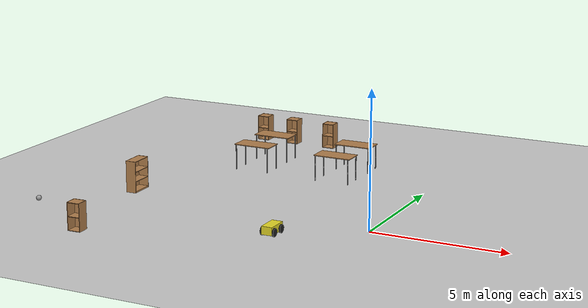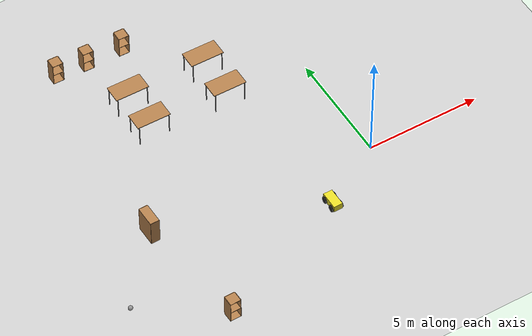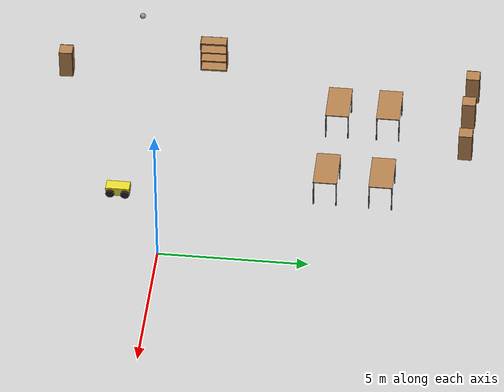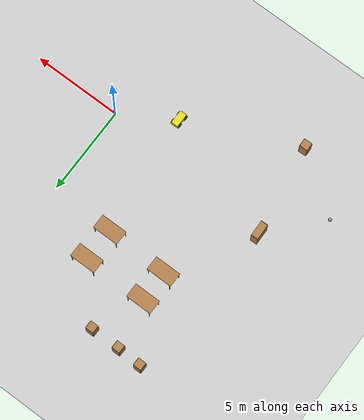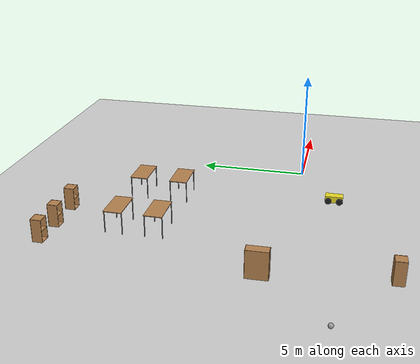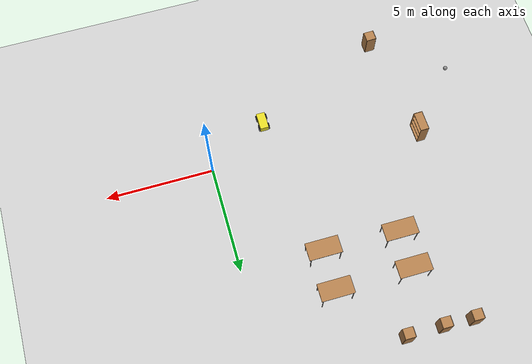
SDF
<sdf version="1.6">
 <world name="default">
  <model name="ground_plane">
   <static>1</static>
   <link name="link">
    <collision name="collision">
     <geometry><plane><normal>0 0 1</normal><size>100 100</size></plane></geometry>
     <surface><friction><ode><mu>100</mu><mu2>50</mu2></ode></friction></surface>
    </collision>
    <visual name="visual">
     <cast_shadows>0</cast_shadows>
     <geometry><plane><normal>0 0 1</normal><size>100 100</size></plane></geometry>
     <material>
      <script><uri>file://media/materials/scripts/gazebo.material</uri><name>Gazebo/Grey</name></script>
     </material>
    </visual>
   </link>
  </model>
  <model name="cabinet">
   <static>1</static>
   <link name="cabinet_bottom_plate">
    <inertial>
     <pose>0 0 -1 0 -0 0</pose>
     <inertia><ixx>2.05</ixx><ixy>0</ixy><ixz>0</ixz><iyy>2.05</iyy><iyz>0</iyz><izz>2.05</izz></inertia>
     <mass>25</mass>
    </inertial>
    <collision name="cabinet_bottom_plate_geom">
     <pose>0 0 0.01 0 -0 0</pose>
     <geometry><box><size>0.45 0.45 0.02</size></box></geometry>
    </collision>
    <visual name="cabinet_bottom_plate_geom_visual">
     <pose>0 0 0.01 0 -0 0</pose>
     <geometry><box><size>0.45 0.45 0.02</size></box></geometry>
     <material>
      <script><uri>file://media/materials/scripts/gazebo.material</uri><name>Gazebo/Wood</name></script>
     </material>
    </visual>
    <collision name="cabinet_bottom_plate_geom_cabinet_back_plate">
     <pose>0.235 0 0.51 0 -0 0</pose>
     <geometry><box><size>0.02 0.45 1.02</size></box></geometry>
    </collision>
    <visual name="cabinet_bottom_plate_geom_cabinet_back_plate_visual">
     <pose>0.235 0 0.51 0 -0 0</pose>
     <geometry><box><size>0.02 0.45 1.02</size></box></geometry>
     <material>
      <script><uri>file://media/materials/scripts/gazebo.material</uri><name>Gazebo/Wood</name></script>
     </material>
    </visual>
    <collision name="cabinet_bottom_plate_geom_cabinet_left_plate">
     <pose>0 0.235 0.51 0 -0 0</pose>
     <geometry><box><size>0.45 0.02 1.02</size></box></geometry>
    </collision>
    <visual name="cabinet_bottom_plate_geom_cabinet_left_plate_visual">
     <pose>0 0.235 0.51 0 -0 0</pose>
     <geometry><box><size>0.45 0.02 1.02</size></box></geometry>
     <material>
      <script><uri>file://media/materials/scripts/gazebo.material</uri><name>Gazebo/Wood</name></script>
     </material>
    </visual>
    <collision name="cabinet_bottom_plate_geom_cabinet_middle_plate">
     <pose>0 0 0.51 0 -0 0</pose>
     <geometry><box><size>0.45 0.45 0.02</size></box></geometry>
    </collision>
    <visual name="cabinet_bottom_plate_geom_cabinet_middle_plate_visual">
     <pose>0 0 0.51 0 -0 0</pose>
     <geometry><box><size>0.45 0.45 0.02</size></box></geometry>
     <material>
      <script><uri>file://media/materials/scripts/gazebo.material</uri><name>Gazebo/Wood</name></script>
     </material>
    </visual>
    <collision name="cabinet_bottom_plate_geom_cabinet_right_plate">
     <pose>0 -0.235 0.51 0 -0 0</pose>
     <geometry><box><size>0.45 0.02 1.02</size></box></geometry>
    </collision>
    <visual name="cabinet_bottom_plate_geom_cabinet_right_plate_visual">
     <pose>0 -0.235 0.51 0 -0 0</pose>
     <geometry><box><size>0.45 0.02 1.02</size></box></geometry>
     <material>
      <script><uri>file://media/materials/scripts/gazebo.material</uri><name>Gazebo/Wood</name></script>
     </material>
    </visual>
    <collision name="cabinet_bottom_plate_geom_cabinet_top_plate">
     <pose>0 0 1.01 0 -0 0</pose>
     <geometry><box><size>0.45 0.45 0.02</size></box></geometry>
    </collision>
    <visual name="cabinet_bottom_plate_geom_cabinet_top_plate_visual">
     <pose>0 0 1.01 0 -0 0</pose>
     <geometry><box><size>0.45 0.45 0.02</size></box></geometry>
     <material>
      <script><uri>file://media/materials/scripts/gazebo.material</uri><name>Gazebo/Wood</name></script>
     </material>
    </visual>
   </link>
   <pose>-9.06039 9.80342 0 0 -0 1.56104</pose>
  </model>
  <model name="cabinet_clone">
   <static>1</static>
   <link name="cabinet_bottom_plate">
    <inertial>
     <pose>0 0 -1 0 -0 0</pose>
     <inertia><ixx>2.05</ixx><ixy>0</ixy><ixz>0</ixz><iyy>2.05</iyy><iyz>0</iyz><izz>2.05</izz></inertia>
     <mass>25</mass>
    </inertial>
    <collision name="cabinet_bottom_plate_geom">
     <pose>0 0 0.01 0 -0 0</pose>
     <geometry><box><size>0.45 0.45 0.02</size></box></geometry>
    </collision>
    <visual name="cabinet_bottom_plate_geom_visual">
     <pose>0 0 0.01 0 -0 0</pose>
     <geometry><box><size>0.45 0.45 0.02</size></box></geometry>
     <material>
      <script><uri>file://media/materials/scripts/gazebo.material</uri><name>Gazebo/Wood</name></script>
     </material>
    </visual>
    <collision name="cabinet_bottom_plate_geom_cabinet_back_plate">
     <pose>0.235 0 0.51 0 -0 0</pose>
     <geometry><box><size>0.02 0.45 1.02</size></box></geometry>
    </collision>
    <visual name="cabinet_bottom_plate_geom_cabinet_back_plate_visual">
     <pose>0.235 0 0.51 0 -0 0</pose>
     <geometry><box><size>0.02 0.45 1.02</size></box></geometry>
     <material>
      <script><uri>file://media/materials/scripts/gazebo.material</uri><name>Gazebo/Wood</name></script>
     </material>
    </visual>
    <collision name="cabinet_bottom_plate_geom_cabinet_left_plate">
     <pose>0 0.235 0.51 0 -0 0</pose>
     <geometry><box><size>0.45 0.02 1.02</size></box></geometry>
    </collision>
    <visual name="cabinet_bottom_plate_geom_cabinet_left_plate_visual">
     <pose>0 0.235 0.51 0 -0 0</pose>
     <geometry><box><size>0.45 0.02 1.02</size></box></geometry>
     <material>
      <script><uri>file://media/materials/scripts/gazebo.material</uri><name>Gazebo/Wood</name></script>
     </material>
    </visual>
    <collision name="cabinet_bottom_plate_geom_cabinet_middle_plate">
     <pose>0 0 0.51 0 -0 0</pose>
     <geometry><box><size>0.45 0.45 0.02</size></box></geometry>
    </collision>
    <visual name="cabinet_bottom_plate_geom_cabinet_middle_plate_visual">
     <pose>0 0 0.51 0 -0 0</pose>
     <geometry><box><size>0.45 0.45 0.02</size></box></geometry>
     <material>
      <script><uri>file://media/materials/scripts/gazebo.material</uri><name>Gazebo/Wood</name></script>
     </material>
    </visual>
    <collision name="cabinet_bottom_plate_geom_cabinet_right_plate">
     <pose>0 -0.235 0.51 0 -0 0</pose>
     <geometry><box><size>0.45 0.02 1.02</size></box></geometry>
    </collision>
    <visual name="cabinet_bottom_plate_geom_cabinet_right_plate_visual">
     <pose>0 -0.235 0.51 0 -0 0</pose>
     <geometry><box><size>0.45 0.02 1.02</size></box></geometry>
     <material>
      <script><uri>file://media/materials/scripts/gazebo.material</uri><name>Gazebo/Wood</name></script>
     </material>
    </visual>
    <collision name="cabinet_bottom_plate_geom_cabinet_top_plate">
     <pose>0 0 1.01 0 -0 0</pose>
     <geometry><box><size>0.45 0.45 0.02</size></box></geometry>
    </collision>
    <visual name="cabinet_bottom_plate_geom_cabinet_top_plate_visual">
     <pose>0 0 1.01 0 -0 0</pose>
     <geometry><box><size>0.45 0.45 0.02</size></box></geometry>
     <material>
      <script><uri>file://media/materials/scripts/gazebo.material</uri><name>Gazebo/Wood</name></script>
     </material>
    </visual>
   </link>
   <pose>-7.68127 9.75015 0 0 -0 1.56104</pose>
  </model>
  <model name="cabinet_clone_0">
   <static>1</static>
   <link name="cabinet_bottom_plate">
    <inertial>
     <pose>0 0 -1 0 -0 0</pose>
     <inertia><ixx>2.05</ixx><ixy>0</ixy><ixz>0</ixz><iyy>2.05</iyy><iyz>0</iyz><izz>2.05</izz></inertia>
     <mass>25</mass>
    </inertial>
    <collision name="cabinet_bottom_plate_geom">
     <pose>0 0 0.01 0 -0 0</pose>
     <geometry><box><size>0.45 0.45 0.02</size></box></geometry>
    </collision>
    <visual name="cabinet_bottom_plate_geom_visual">
     <pose>0 0 0.01 0 -0 0</pose>
     <geometry><box><size>0.45 0.45 0.02</size></box></geometry>
     <material>
      <script><uri>file://media/materials/scripts/gazebo.material</uri><name>Gazebo/Wood</name></script>
     </material>
    </visual>
    <collision name="cabinet_bottom_plate_geom_cabinet_back_plate">
     <pose>0.235 0 0.51 0 -0 0</pose>
     <geometry><box><size>0.02 0.45 1.02</size></box></geometry>
    </collision>
    <visual name="cabinet_bottom_plate_geom_cabinet_back_plate_visual">
     <pose>0.235 0 0.51 0 -0 0</pose>
     <geometry><box><size>0.02 0.45 1.02</size></box></geometry>
     <material>
      <script><uri>file://media/materials/scripts/gazebo.material</uri><name>Gazebo/Wood</name></script>
     </material>
    </visual>
    <collision name="cabinet_bottom_plate_geom_cabinet_left_plate">
     <pose>0 0.235 0.51 0 -0 0</pose>
     <geometry><box><size>0.45 0.02 1.02</size></box></geometry>
    </collision>
    <visual name="cabinet_bottom_plate_geom_cabinet_left_plate_visual">
     <pose>0 0.235 0.51 0 -0 0</pose>
     <geometry><box><size>0.45 0.02 1.02</size></box></geometry>
     <material>
      <script><uri>file://media/materials/scripts/gazebo.material</uri><name>Gazebo/Wood</name></script>
     </material>
    </visual>
    <collision name="cabinet_bottom_plate_geom_cabinet_middle_plate">
     <pose>0 0 0.51 0 -0 0</pose>
     <geometry><box><size>0.45 0.45 0.02</size></box></geometry>
    </collision>
    <visual name="cabinet_bottom_plate_geom_cabinet_middle_plate_visual">
     <pose>0 0 0.51 0 -0 0</pose>
     <geometry><box><size>0.45 0.45 0.02</size></box></geometry>
     <material>
      <script><uri>file://media/materials/scripts/gazebo.material</uri><name>Gazebo/Wood</name></script>
     </material>
    </visual>
    <collision name="cabinet_bottom_plate_geom_cabinet_right_plate">
     <pose>0 -0.235 0.51 0 -0 0</pose>
     <geometry><box><size>0.45 0.02 1.02</size></box></geometry>
    </collision>
    <visual name="cabinet_bottom_plate_geom_cabinet_right_plate_visual">
     <pose>0 -0.235 0.51 0 -0 0</pose>
     <geometry><box><size>0.45 0.02 1.02</size></box></geometry>
     <material>
      <script><uri>file://media/materials/scripts/gazebo.material</uri><name>Gazebo/Wood</name></script>
     </material>
    </visual>
    <collision name="cabinet_bottom_plate_geom_cabinet_top_plate">
     <pose>0 0 1.01 0 -0 0</pose>
     <geometry><box><size>0.45 0.45 0.02</size></box></geometry>
    </collision>
    <visual name="cabinet_bottom_plate_geom_cabinet_top_plate_visual">
     <pose>0 0 1.01 0 -0 0</pose>
     <geometry><box><size>0.45 0.45 0.02</size></box></geometry>
     <material>
      <script><uri>file://media/materials/scripts/gazebo.material</uri><name>Gazebo/Wood</name></script>
     </material>
    </visual>
   </link>
   <pose>-6.01875 9.75 0 0 -0 1.56104</pose>
  </model>
  <model name="table">
   <static>1</static>
   <link name="link">
    <collision name="surface">
     <pose>0 0 1 0 -0 0</pose>
     <geometry><box><size>1.5 0.8 0.03</size></box></geometry>
     <surface><friction><ode><mu>0.6</mu><mu2>0.6</mu2></ode></friction></surface>
    </collision>
    <visual name="visual1">
     <pose>0 0 1 0 -0 0</pose>
     <geometry><box><size>1.5 0.8 0.03</size></box></geometry>
     <material>
      <script><uri>file://media/materials/scripts/gazebo.material</uri><name>Gazebo/Wood</name></script>
     </material>
    </visual>
    <collision name="front_left_leg">
     <pose>0.68 0.38 0.5 0 -0 0</pose>
     <geometry><cylinder><radius>0.02</radius><length>1</length></cylinder></geometry>
    </collision>
    <visual name="front_left_leg">
     <pose>0.68 0.38 0.5 0 -0 0</pose>
     <geometry><cylinder><radius>0.02</radius><length>1</length></cylinder></geometry>
     <material>
      <script><uri>file://media/materials/scripts/gazebo.material</uri><name>Gazebo/Grey</name></script>
     </material>
    </visual>
    <collision name="front_right_leg">
     <pose>0.68 -0.38 0.5 0 -0 0</pose>
     <geometry><cylinder><radius>0.02</radius><length>1</length></cylinder></geometry>
    </collision>
    <visual name="front_right_leg">
     <pose>0.68 -0.38 0.5 0 -0 0</pose>
     <geometry><cylinder><radius>0.02</radius><length>1</length></cylinder></geometry>
     <material>
      <script><uri>file://media/materials/scripts/gazebo.material</uri><name>Gazebo/Grey</name></script>
     </material>
    </visual>
    <collision name="back_right_leg">
     <pose>-0.68 -0.38 0.5 0 -0 0</pose>
     <geometry><cylinder><radius>0.02</radius><length>1</length></cylinder></geometry>
    </collision>
    <visual name="back_right_leg">
     <pose>-0.68 -0.38 0.5 0 -0 0</pose>
     <geometry><cylinder><radius>0.02</radius><length>1</length></cylinder></geometry>
     <material>
      <script><uri>file://media/materials/scripts/gazebo.material</uri><name>Gazebo/Grey</name></script>
     </material>
    </visual>
    <collision name="back_left_leg">
     <pose>-0.68 0.38 0.5 0 -0 0</pose>
     <geometry><cylinder><radius>0.02</radius><length>1</length></cylinder></geometry>
    </collision>
    <visual name="back_left_leg">
     <pose>-0.68 0.38 0.5 0 -0 0</pose>
     <geometry><cylinder><radius>0.02</radius><length>1</length></cylinder></geometry>
     <material>
      <script><uri>file://media/materials/scripts/gazebo.material</uri><name>Gazebo/Grey</name></script>
     </material>
    </visual>
   </link>
   <pose>-7.19369 7.0731 0 0 -0 0</pose>
  </model>
  <model name="table_0">
   <static>1</static>
   <link name="link">
    <collision name="surface">
     <pose>0 0 1 0 -0 0</pose>
     <geometry><box><size>1.5 0.8 0.03</size></box></geometry>
     <surface><friction><ode><mu>0.6</mu><mu2>0.6</mu2></ode></friction></surface>
    </collision>
    <visual name="visual1">
     <pose>0 0 1 0 -0 0</pose>
     <geometry><box><size>1.5 0.8 0.03</size></box></geometry>
     <material>
      <script><uri>file://media/materials/scripts/gazebo.material</uri><name>Gazebo/Wood</name></script>
     </material>
    </visual>
    <collision name="front_left_leg">
     <pose>0.68 0.38 0.5 0 -0 0</pose>
     <geometry><cylinder><radius>0.02</radius><length>1</length></cylinder></geometry>
    </collision>
    <visual name="front_left_leg">
     <pose>0.68 0.38 0.5 0 -0 0</pose>
     <geometry><cylinder><radius>0.02</radius><length>1</length></cylinder></geometry>
     <material>
      <script><uri>file://media/materials/scripts/gazebo.material</uri><name>Gazebo/Grey</name></script>
     </material>
    </visual>
    <collision name="front_right_leg">
     <pose>0.68 -0.38 0.5 0 -0 0</pose>
     <geometry><cylinder><radius>0.02</radius><length>1</length></cylinder></geometry>
    </collision>
    <visual name="front_right_leg">
     <pose>0.68 -0.38 0.5 0 -0 0</pose>
     <geometry><cylinder><radius>0.02</radius><length>1</length></cylinder></geometry>
     <material>
      <script><uri>file://media/materials/scripts/gazebo.material</uri><name>Gazebo/Grey</name></script>
     </material>
    </visual>
    <collision name="back_right_leg">
     <pose>-0.68 -0.38 0.5 0 -0 0</pose>
     <geometry><cylinder><radius>0.02</radius><length>1</length></cylinder></geometry>
    </collision>
    <visual name="back_right_leg">
     <pose>-0.68 -0.38 0.5 0 -0 0</pose>
     <geometry><cylinder><radius>0.02</radius><length>1</length></cylinder></geometry>
     <material>
      <script><uri>file://media/materials/scripts/gazebo.material</uri><name>Gazebo/Grey</name></script>
     </material>
    </visual>
    <collision name="back_left_leg">
     <pose>-0.68 0.38 0.5 0 -0 0</pose>
     <geometry><cylinder><radius>0.02</radius><length>1</length></cylinder></geometry>
    </collision>
    <visual name="back_left_leg">
     <pose>-0.68 0.38 0.5 0 -0 0</pose>
     <geometry><cylinder><radius>0.02</radius><length>1</length></cylinder></geometry>
     <material>
      <script><uri>file://media/materials/scripts/gazebo.material</uri><name>Gazebo/Grey</name></script>
     </material>
    </visual>
   </link>
   <pose>-7.17578 5.33913 0 0 -0 0</pose>
  </model>
  <model name="table_1">
   <static>1</static>
   <link name="link">
    <collision name="surface">
     <pose>0 0 1 0 -0 0</pose>
     <geometry><box><size>1.5 0.8 0.03</size></box></geometry>
     <surface><friction><ode><mu>0.6</mu><mu2>0.6</mu2></ode></friction></surface>
    </collision>
    <visual name="visual1">
     <pose>0 0 1 0 -0 0</pose>
     <geometry><box><size>1.5 0.8 0.03</size></box></geometry>
     <material>
      <script><uri>file://media/materials/scripts/gazebo.material</uri><name>Gazebo/Wood</name></script>
     </material>
    </visual>
    <collision name="front_left_leg">
     <pose>0.68 0.38 0.5 0 -0 0</pose>
     <geometry><cylinder><radius>0.02</radius><length>1</length></cylinder></geometry>
    </collision>
    <visual name="front_left_leg">
     <pose>0.68 0.38 0.5 0 -0 0</pose>
     <geometry><cylinder><radius>0.02</radius><length>1</length></cylinder></geometry>
     <material>
      <script><uri>file://media/materials/scripts/gazebo.material</uri><name>Gazebo/Grey</name></script>
     </material>
    </visual>
    <collision name="front_right_leg">
     <pose>0.68 -0.38 0.5 0 -0 0</pose>
     <geometry><cylinder><radius>0.02</radius><length>1</length></cylinder></geometry>
    </collision>
    <visual name="front_right_leg">
     <pose>0.68 -0.38 0.5 0 -0 0</pose>
     <geometry><cylinder><radius>0.02</radius><length>1</length></cylinder></geometry>
     <material>
      <script><uri>file://media/materials/scripts/gazebo.material</uri><name>Gazebo/Grey</name></script>
     </material>
    </visual>
    <collision name="back_right_leg">
     <pose>-0.68 -0.38 0.5 0 -0 0</pose>
     <geometry><cylinder><radius>0.02</radius><length>1</length></cylinder></geometry>
    </collision>
    <visual name="back_right_leg">
     <pose>-0.68 -0.38 0.5 0 -0 0</pose>
     <geometry><cylinder><radius>0.02</radius><length>1</length></cylinder></geometry>
     <material>
      <script><uri>file://media/materials/scripts/gazebo.material</uri><name>Gazebo/Grey</name></script>
     </material>
    </visual>
    <collision name="back_left_leg">
     <pose>-0.68 0.38 0.5 0 -0 0</pose>
     <geometry><cylinder><radius>0.02</radius><length>1</length></cylinder></geometry>
    </collision>
    <visual name="back_left_leg">
     <pose>-0.68 0.38 0.5 0 -0 0</pose>
     <geometry><cylinder><radius>0.02</radius><length>1</length></cylinder></geometry>
     <material>
      <script><uri>file://media/materials/scripts/gazebo.material</uri><name>Gazebo/Grey</name></script>
     </material>
    </visual>
   </link>
   <pose>-3.66733 7.11156 0 0 -0 0</pose>
  </model>
  <model name="table_2">
   <static>1</static>
   <link name="link">
    <collision name="surface">
     <pose>0 0 1 0 -0 0</pose>
     <geometry><box><size>1.5 0.8 0.03</size></box></geometry>
     <surface><friction><ode><mu>0.6</mu><mu2>0.6</mu2></ode></friction></surface>
    </collision>
    <visual name="visual1">
     <pose>0 0 1 0 -0 0</pose>
     <geometry><box><size>1.5 0.8 0.03</size></box></geometry>
     <material>
      <script><uri>file://media/materials/scripts/gazebo.material</uri><name>Gazebo/Wood</name></script>
     </material>
    </visual>
    <collision name="front_left_leg">
     <pose>0.68 0.38 0.5 0 -0 0</pose>
     <geometry><cylinder><radius>0.02</radius><length>1</length></cylinder></geometry>
    </collision>
    <visual name="front_left_leg">
     <pose>0.68 0.38 0.5 0 -0 0</pose>
     <geometry><cylinder><radius>0.02</radius><length>1</length></cylinder></geometry>
     <material>
      <script><uri>file://media/materials/scripts/gazebo.material</uri><name>Gazebo/Grey</name></script>
     </material>
    </visual>
    <collision name="front_right_leg">
     <pose>0.68 -0.38 0.5 0 -0 0</pose>
     <geometry><cylinder><radius>0.02</radius><length>1</length></cylinder></geometry>
    </collision>
    <visual name="front_right_leg">
     <pose>0.68 -0.38 0.5 0 -0 0</pose>
     <geometry><cylinder><radius>0.02</radius><length>1</length></cylinder></geometry>
     <material>
      <script><uri>file://media/materials/scripts/gazebo.material</uri><name>Gazebo/Grey</name></script>
     </material>
    </visual>
    <collision name="back_right_leg">
     <pose>-0.68 -0.38 0.5 0 -0 0</pose>
     <geometry><cylinder><radius>0.02</radius><length>1</length></cylinder></geometry>
    </collision>
    <visual name="back_right_leg">
     <pose>-0.68 -0.38 0.5 0 -0 0</pose>
     <geometry><cylinder><radius>0.02</radius><length>1</length></cylinder></geometry>
     <material>
      <script><uri>file://media/materials/scripts/gazebo.material</uri><name>Gazebo/Grey</name></script>
     </material>
    </visual>
    <collision name="back_left_leg">
     <pose>-0.68 0.38 0.5 0 -0 0</pose>
     <geometry><cylinder><radius>0.02</radius><length>1</length></cylinder></geometry>
    </collision>
    <visual name="back_left_leg">
     <pose>-0.68 0.38 0.5 0 -0 0</pose>
     <geometry><cylinder><radius>0.02</radius><length>1</length></cylinder></geometry>
     <material>
      <script><uri>file://media/materials/scripts/gazebo.material</uri><name>Gazebo/Grey</name></script>
     </material>
    </visual>
   </link>
   <pose>-3.69516 5.25005 0 0 -0 0</pose>
  </model>
  <model name="bookshelf_0">
   <static>1</static>
   <link name="link">
    <inertial><mass>1</mass></inertial>
    <collision name="back">
     <pose>0 0.005 0.6 0 -0 0</pose>
     <geometry><box><size>0.9 0.01 1.2</size></box></geometry>
    </collision>
    <visual name="visual1">
     <pose>0 0.005 0.6 0 -0 0</pose>
     <geometry><box><size>0.9 0.01 1.2</size></box></geometry>
     <material>
      <script><uri>file://media/materials/scripts/gazebo.material</uri><name>Gazebo/Wood</name></script>
     </material>
    </visual>
    <collision name="left_side">
     <pose>0.45 -0.195 0.6 0 -0 0</pose>
     <geometry><box><size>0.02 0.4 1.2</size></box></geometry>
    </collision>
    <visual name="visual2">
     <pose>0.45 -0.195 0.6 0 -0 0</pose>
     <geometry><box><size>0.02 0.4 1.2</size></box></geometry>
     <material>
      <script><uri>file://media/materials/scripts/gazebo.material</uri><name>Gazebo/Wood</name></script>
     </material>
    </visual>
    <collision name="right_side">
     <pose>-0.45 -0.195 0.6 0 -0 0</pose>
     <geometry><box><size>0.02 0.4 1.2</size></box></geometry>
    </collision>
    <visual name="visual3">
     <pose>-0.45 -0.195 0.6 0 -0 0</pose>
     <geometry><box><size>0.02 0.4 1.2</size></box></geometry>
     <material>
      <script><uri>file://media/materials/scripts/gazebo.material</uri><name>Gazebo/Wood</name></script>
     </material>
    </visual>
    <collision name="bottom">
     <pose>0 -0.195 0.03 0 -0 0</pose>
     <geometry><box><size>0.88 0.4 0.06</size></box></geometry>
    </collision>
    <visual name="visual4">
     <pose>0 -0.195 0.03 0 -0 0</pose>
     <geometry><box><size>0.88 0.4 0.06</size></box></geometry>
     <material>
      <script><uri>file://media/materials/scripts/gazebo.material</uri><name>Gazebo/Wood</name></script>
     </material>
    </visual>
    <collision name="top">
     <pose>0 -0.195 1.19 0 -0 0</pose>
     <geometry><box><size>0.88 0.4 0.02</size></box></geometry>
    </collision>
    <visual name="visual5">
     <pose>0 -0.195 1.19 0 -0 0</pose>
     <geometry><box><size>0.88 0.4 0.02</size></box></geometry>
     <material>
      <script><uri>file://media/materials/scripts/gazebo.material</uri><name>Gazebo/Wood</name></script>
     </material>
    </visual>
    <collision name="low_shelf">
     <pose>0 -0.195 0.43 0 -0 0</pose>
     <geometry><box><size>0.88 0.4 0.02</size></box></geometry>
    </collision>
    <visual name="visual6">
     <pose>0 -0.195 0.43 0 -0 0</pose>
     <geometry><box><size>0.88 0.4 0.02</size></box></geometry>
     <material>
      <script><uri>file://media/materials/scripts/gazebo.material</uri><name>Gazebo/Wood</name></script>
     </material>
    </visual>
    <collision name="high_shelf">
     <pose>0 -0.195 0.8 0 -0 0</pose>
     <geometry><box><size>0.88 0.4 0.02</size></box></geometry>
    </collision>
    <visual name="visual7">
     <pose>0 -0.195 0.8 0 -0 0</pose>
     <geometry><box><size>0.88 0.4 0.02</size></box></geometry>
     <material>
      <script><uri>file://media/materials/scripts/gazebo.material</uri><name>Gazebo/Wood</name></script>
     </material>
    </visual>
   </link>
   <pose>-9.98625 0.736213 0 0 -0 1.59312</pose>
  </model>
  <model name="cabinet_0">
   <static>1</static>
   <link name="cabinet_bottom_plate">
    <inertial>
     <pose>0 0 -1 0 -0 0</pose>
     <inertia><ixx>2.05</ixx><ixy>0</ixy><ixz>0</ixz><iyy>2.05</iyy><iyz>0</iyz><izz>2.05</izz></inertia>
     <mass>25</mass>
    </inertial>
    <collision name="cabinet_bottom_plate_geom">
     <pose>0 0 0.01 0 -0 0</pose>
     <geometry><box><size>0.45 0.45 0.02</size></box></geometry>
    </collision>
    <visual name="cabinet_bottom_plate_geom_visual">
     <pose>0 0 0.01 0 -0 0</pose>
     <geometry><box><size>0.45 0.45 0.02</size></box></geometry>
     <material>
      <script><uri>file://media/materials/scripts/gazebo.material</uri><name>Gazebo/Wood</name></script>
     </material>
    </visual>
    <collision name="cabinet_bottom_plate_geom_cabinet_back_plate">
     <pose>0.235 0 0.51 0 -0 0</pose>
     <geometry><box><size>0.02 0.45 1.02</size></box></geometry>
    </collision>
    <visual name="cabinet_bottom_plate_geom_cabinet_back_plate_visual">
     <pose>0.235 0 0.51 0 -0 0</pose>
     <geometry><box><size>0.02 0.45 1.02</size></box></geometry>
     <material>
      <script><uri>file://media/materials/scripts/gazebo.material</uri><name>Gazebo/Wood</name></script>
     </material>
    </visual>
    <collision name="cabinet_bottom_plate_geom_cabinet_left_plate">
     <pose>0 0.235 0.51 0 -0 0</pose>
     <geometry><box><size>0.45 0.02 1.02</size></box></geometry>
    </collision>
    <visual name="cabinet_bottom_plate_geom_cabinet_left_plate_visual">
     <pose>0 0.235 0.51 0 -0 0</pose>
     <geometry><box><size>0.45 0.02 1.02</size></box></geometry>
     <material>
      <script><uri>file://media/materials/scripts/gazebo.material</uri><name>Gazebo/Wood</name></script>
     </material>
    </visual>
    <collision name="cabinet_bottom_plate_geom_cabinet_middle_plate">
     <pose>0 0 0.51 0 -0 0</pose>
     <geometry><box><size>0.45 0.45 0.02</size></box></geometry>
    </collision>
    <visual name="cabinet_bottom_plate_geom_cabinet_middle_plate_visual">
     <pose>0 0 0.51 0 -0 0</pose>
     <geometry><box><size>0.45 0.45 0.02</size></box></geometry>
     <material>
      <script><uri>file://media/materials/scripts/gazebo.material</uri><name>Gazebo/Wood</name></script>
     </material>
    </visual>
    <collision name="cabinet_bottom_plate_geom_cabinet_right_plate">
     <pose>0 -0.235 0.51 0 -0 0</pose>
     <geometry><box><size>0.45 0.02 1.02</size></box></geometry>
    </collision>
    <visual name="cabinet_bottom_plate_geom_cabinet_right_plate_visual">
     <pose>0 -0.235 0.51 0 -0 0</pose>
     <geometry><box><size>0.45 0.02 1.02</size></box></geometry>
     <material>
      <script><uri>file://media/materials/scripts/gazebo.material</uri><name>Gazebo/Wood</name></script>
     </material>
    </visual>
    <collision name="cabinet_bottom_plate_geom_cabinet_top_plate">
     <pose>0 0 1.01 0 -0 0</pose>
     <geometry><box><size>0.45 0.45 0.02</size></box></geometry>
    </collision>
    <visual name="cabinet_bottom_plate_geom_cabinet_top_plate_visual">
     <pose>0 0 1.01 0 -0 0</pose>
     <geometry><box><size>0.45 0.45 0.02</size></box></geometry>
     <material>
      <script><uri>file://media/materials/scripts/gazebo.material</uri><name>Gazebo/Wood</name></script>
     </material>
    </visual>
   </link>
   <pose>-9.01611 -4.34205 0 0 -0 1.59956</pose>
  </model>
  <model name="mobile_robot_0">
   <link name="wheel_0">
    <pose>-0.236758 -0.25 5e-06 0 1.56974 0</pose>
    <inertial>
     <mass>0.15</mass>
     <inertia><ixx>0.145833</ixx><ixy>0</ixy><ixz>0</ixz><iyy>0.145833</iyy><iyz>0</iyz><izz>0.125</izz></inertia>
    </inertial>
    <visual name="visual">
     <geometry><cylinder><radius>0.15</radius><length>0.05</length></cylinder></geometry>
     <material>
      <lighting>1</lighting>
      <script><uri>file://media/materials/scripts/gazebo.material</uri><name>Gazebo/Black</name></script>
      <shader type="pixel"><normal_map>__default__</normal_map></shader>
      <ambient>0.3 0.3 0.3 1</ambient>
      <diffuse>0.7 0.7 0.7 1</diffuse>
      <specular>0.01 0.01 0.01 1</specular>
      <emissive>0 0 0 1</emissive>
     </material>
    </visual>
    <collision name="collision">
     <geometry><cylinder><radius>0.15</radius><length>0.05</length></cylinder></geometry>
     <surface>
      <friction>
       <ode><mu>1</mu><mu2>1</mu2><fdir1>0 0 0</fdir1><slip1>0</slip1><slip2>0</slip2></ode>
       <torsional>
        <coefficient>1</coefficient>
        <patch_radius>0</patch_radius>
        <surface_radius>0</surface_radius>
        <use_patch_radius>1</use_patch_radius>
        <ode><slip>0</slip></ode>
       </torsional>
      </friction>
      <bounce><restitution_coefficient>0</restitution_coefficient><threshold>1e+06</threshold></bounce>
      <contact>
       <collide_without_contact>0</collide_without_contact>
       <collide_without_contact_bitmask>1</collide_without_contact_bitmask>
       <collide_bitmask>1</collide_bitmask>
       <ode>
        <soft_cfm>0</soft_cfm>
        <soft_erp>0.2</soft_erp>
        <kp>1e+13</kp>
        <kd>1</kd>
        <max_vel>0.01</max_vel>
        <min_depth>0</min_depth>
       </ode>
       <bullet>
        <split_impulse>1</split_impulse>
        <split_impulse_penetration_threshold>-0.01</split_impulse_penetration_threshold>
        <soft_cfm>0</soft_cfm>
        <soft_erp>0.2</soft_erp>
        <kp>1e+13</kp>
        <kd>1</kd>
       </bullet>
      </contact>
     </surface>
    </collision>
   </link>
   <link name="body">
    <pose>6e-06 0 0.064159 0 0.0001 0</pose>
    <inertial>
     <mass>1</mass>
     <inertia>
      <ixx>0.166667</ixx>
      <ixy>0</ixy>
      <ixz>0</ixz>
      <iyy>0.166667</iyy>
      <iyz>0</iyz>
      <izz>0.166667</izz>
     </inertia>
    </inertial>
    <visual name="visual">
     <geometry><box><size>0.4 0.8 0.3</size></box></geometry>
     <material>
      <lighting>1</lighting>
      <script><uri>file://media/materials/scripts/gazebo.material</uri><name>Gazebo/DarkYellow</name></script>
      <shader type="pixel"><normal_map>__default__</normal_map></shader>
      <ambient>0.3 0.3 0.3 1</ambient>
      <diffuse>0.7 0.7 0.7 1</diffuse>
      <specular>0.01 0.01 0.01 1</specular>
      <emissive>0 0 0 1</emissive>
     </material>
    </visual>
    <collision name="collision">
     <geometry><box><size>0.4 0.8 0.3</size></box></geometry>
     <surface>
      <friction>
       <ode><mu>1</mu><mu2>1</mu2><fdir1>0 0 0</fdir1><slip1>0</slip1><slip2>0</slip2></ode>
       <torsional>
        <coefficient>1</coefficient>
        <patch_radius>0</patch_radius>
        <surface_radius>0</surface_radius>
        <use_patch_radius>1</use_patch_radius>
        <ode><slip>0</slip></ode>
       </torsional>
      </friction>
      <bounce><restitution_coefficient>0</restitution_coefficient><threshold>1e+06</threshold></bounce>
      <contact>
       <collide_without_contact>0</collide_without_contact>
       <collide_without_contact_bitmask>1</collide_without_contact_bitmask>
       <collide_bitmask>1</collide_bitmask>
       <ode>
        <soft_cfm>0</soft_cfm>
        <soft_erp>0.2</soft_erp>
        <kp>1e+13</kp>
        <kd>1</kd>
        <max_vel>0.01</max_vel>
        <min_depth>0</min_depth>
       </ode>
       <bullet>
        <split_impulse>1</split_impulse>
        <split_impulse_penetration_threshold>-0.01</split_impulse_penetration_threshold>
        <soft_cfm>0</soft_cfm>
        <soft_erp>0.2</soft_erp>
        <kp>1e+13</kp>
        <kd>1</kd>
       </bullet>
      </contact>
     </surface>
    </collision>
   </link>
   <link name="wheel_1">
    <pose>0.220613 -0.25 -1e-06 0 1.56974 0</pose>
    <inertial>
     <mass>0.15</mass>
     <inertia><ixx>0.145833</ixx><ixy>0</ixy><ixz>0</ixz><iyy>0.145833</iyy><iyz>0</iyz><izz>0.125</izz></inertia>
    </inertial>
    <visual name="visual">
     <geometry><cylinder><radius>0.15</radius><length>0.05</length></cylinder></geometry>
     <material>
      <lighting>1</lighting>
      <script><uri>file://media/materials/scripts/gazebo.material</uri><name>Gazebo/Black</name></script>
      <shader type="pixel"><normal_map>__default__</normal_map></shader>
      <ambient>0.3 0.3 0.3 1</ambient>
      <diffuse>0.7 0.7 0.7 1</diffuse>
      <specular>0.01 0.01 0.01 1</specular>
      <emissive>0 0 0 1</emissive>
     </material>
    </visual>
    <collision name="collision">
     <geometry><cylinder><radius>0.15</radius><length>0.05</length></cylinder></geometry>
     <surface>
      <friction>
       <ode><mu>1</mu><mu2>1</mu2><fdir1>0 0 0</fdir1><slip1>0</slip1><slip2>0</slip2></ode>
       <torsional>
        <coefficient>1</coefficient>
        <patch_radius>0</patch_radius>
        <surface_radius>0</surface_radius>
        <use_patch_radius>1</use_patch_radius>
        <ode><slip>0</slip></ode>
       </torsional>
      </friction>
      <bounce><restitution_coefficient>0</restitution_coefficient><threshold>1e+06</threshold></bounce>
      <contact>
       <collide_without_contact>0</collide_without_contact>
       <collide_without_contact_bitmask>1</collide_without_contact_bitmask>
       <collide_bitmask>1</collide_bitmask>
       <ode>
        <soft_cfm>0</soft_cfm>
        <soft_erp>0.2</soft_erp>
        <kp>1e+13</kp>
        <kd>1</kd>
        <max_vel>0.01</max_vel>
        <min_depth>0</min_depth>
       </ode>
       <bullet>
        <split_impulse>1</split_impulse>
        <split_impulse_penetration_threshold>-0.01</split_impulse_penetration_threshold>
        <soft_cfm>0</soft_cfm>
        <soft_erp>0.2</soft_erp>
        <kp>1e+13</kp>
        <kd>1</kd>
       </bullet>
      </contact>
     </surface>
    </collision>
   </link>
   <link name="wheel_2">
    <pose>-0.232377 0.25 -1e-06 0 1.56974 0</pose>
    <inertial>
     <mass>0.15</mass>
     <inertia><ixx>0.145833</ixx><ixy>0</ixy><ixz>0</ixz><iyy>0.145833</iyy><iyz>0</iyz><izz>0.125</izz></inertia>
    </inertial>
    <visual name="visual">
     <geometry><cylinder><radius>0.15</radius><length>0.05</length></cylinder></geometry>
     <material>
      <lighting>1</lighting>
      <script><uri>file://media/materials/scripts/gazebo.material</uri><name>Gazebo/Black</name></script>
      <shader type="pixel"><normal_map>__default__</normal_map></shader>
      <ambient>0.3 0.3 0.3 1</ambient>
      <diffuse>0.7 0.7 0.7 1</diffuse>
      <specular>0.01 0.01 0.01 1</specular>
      <emissive>0 0 0 1</emissive>
     </material>
    </visual>
    <collision name="collision">
     <geometry><cylinder><radius>0.15</radius><length>0.05</length></cylinder></geometry>
     <surface>
      <friction>
       <ode><mu>1</mu><mu2>1</mu2><fdir1>0 0 0</fdir1><slip1>0</slip1><slip2>0</slip2></ode>
       <torsional>
        <coefficient>1</coefficient>
        <patch_radius>0</patch_radius>
        <surface_radius>0</surface_radius>
        <use_patch_radius>1</use_patch_radius>
        <ode><slip>0</slip></ode>
       </torsional>
      </friction>
      <bounce><restitution_coefficient>0</restitution_coefficient><threshold>1e+06</threshold></bounce>
      <contact>
       <collide_without_contact>0</collide_without_contact>
       <collide_without_contact_bitmask>1</collide_without_contact_bitmask>
       <collide_bitmask>1</collide_bitmask>
       <ode>
        <soft_cfm>0</soft_cfm>
        <soft_erp>0.2</soft_erp>
        <kp>1e+13</kp>
        <kd>1</kd>
        <max_vel>0.01</max_vel>
        <min_depth>0</min_depth>
       </ode>
       <bullet>
        <split_impulse>1</split_impulse>
        <split_impulse_penetration_threshold>-0.01</split_impulse_penetration_threshold>
        <soft_cfm>0</soft_cfm>
        <soft_erp>0.2</soft_erp>
        <kp>1e+13</kp>
        <kd>1</kd>
       </bullet>
      </contact>
     </surface>
    </collision>
   </link>
   <link name="wheel_3">
    <pose>0.22699 0.25 -1e-06 0 1.56974 0</pose>
    <inertial>
     <mass>0.15</mass>
     <inertia><ixx>0.145833</ixx><ixy>0</ixy><ixz>0</ixz><iyy>0.145833</iyy><iyz>0</iyz><izz>0.125</izz></inertia>
    </inertial>
    <visual name="visual">
     <geometry><cylinder><radius>0.15</radius><length>0.05</length></cylinder></geometry>
     <material>
      <lighting>1</lighting>
      <script><uri>file://media/materials/scripts/gazebo.material</uri><name>Gazebo/Black</name></script>
      <shader type="pixel"><normal_map>__default__</normal_map></shader>
      <ambient>0.3 0.3 0.3 1</ambient>
      <diffuse>0.7 0.7 0.7 1</diffuse>
      <specular>0.01 0.01 0.01 1</specular>
      <emissive>0 0 0 1</emissive>
     </material>
    </visual>
    <collision name="collision">
     <geometry><cylinder><radius>0.15</radius><length>0.05</length></cylinder></geometry>
     <surface>
      <friction>
       <ode><mu>1</mu><mu2>1</mu2><fdir1>0 0 0</fdir1><slip1>0</slip1><slip2>0</slip2></ode>
       <torsional>
        <coefficient>1</coefficient>
        <patch_radius>0</patch_radius>
        <surface_radius>0</surface_radius>
        <use_patch_radius>1</use_patch_radius>
        <ode><slip>0</slip></ode>
       </torsional>
      </friction>
      <bounce><restitution_coefficient>0</restitution_coefficient><threshold>1e+06</threshold></bounce>
      <contact>
       <collide_without_contact>0</collide_without_contact>
       <collide_without_contact_bitmask>1</collide_without_contact_bitmask>
       <collide_bitmask>1</collide_bitmask>
       <ode>
        <soft_cfm>0</soft_cfm>
        <soft_erp>0.2</soft_erp>
        <kp>1e+13</kp>
        <kd>1</kd>
        <max_vel>0.01</max_vel>
        <min_depth>0</min_depth>
       </ode>
       <bullet>
        <split_impulse>1</split_impulse>
        <split_impulse_penetration_threshold>-0.01</split_impulse_penetration_threshold>
        <soft_cfm>0</soft_cfm>
        <soft_erp>0.2</soft_erp>
        <kp>1e+13</kp>
        <kd>1</kd>
       </bullet>
      </contact>
     </surface>
    </collision>
   </link>
   <static>0</static>
   <pose>-2.86458 -1.69552 0.149742 0 0.001069 0</pose>
  </model>
  <model name="my_ball">
   <link name="link">
    <inertial>
     <mass>1</mass>
     <inertia><ixx>0.1</ixx><ixy>0</ixy><ixz>0</ixz><iyy>0.1</iyy><iyz>0</iyz><izz>0.1</izz></inertia>
    </inertial>
    <visual name="visual">
     <geometry><sphere><radius>0.1</radius></sphere></geometry>
     <material>
      <script><name>Gazebo/Grey</name><uri>file://media/materials/scripts/gazebo.material</uri></script>
      <shader type="pixel"><normal_map>__default__</normal_map></shader>
      <ambient>1 1 1 1</ambient>
      <diffuse>1 1 1 1</diffuse>
      <specular>1 1 1 1</specular>
      <emissive>1 1 1 1</emissive>
     </material>
    </visual>
    <collision name="collision">
     <geometry><sphere><radius>0.1</radius></sphere></geometry>
     <surface>
      <friction>
       <ode><mu>1</mu><mu2>1</mu2><fdir1>0 0 0</fdir1><slip1>0</slip1><slip2>0</slip2></ode>
       <torsional>
        <coefficient>1</coefficient>
        <patch_radius>0</patch_radius>
        <surface_radius>0</surface_radius>
        <use_patch_radius>1</use_patch_radius>
        <ode><slip>0</slip></ode>
       </torsional>
      </friction>
      <bounce><restitution_coefficient>0</restitution_coefficient><threshold>1e+06</threshold></bounce>
      <contact>
       <collide_without_contact>0</collide_without_contact>
       <collide_without_contact_bitmask>1</collide_without_contact_bitmask>
       <collide_bitmask>1</collide_bitmask>
       <ode>
        <soft_cfm>0</soft_cfm>
        <soft_erp>0.2</soft_erp>
        <kp>1e+13</kp>
        <kd>1</kd>
        <max_vel>0.01</max_vel>
        <min_depth>0</min_depth>
       </ode>
       <bullet>
        <split_impulse>1</split_impulse>
        <split_impulse_penetration_threshold>-0.01</split_impulse_penetration_threshold>
        <soft_cfm>0</soft_cfm>
        <soft_erp>0.2</soft_erp>
        <kp>1e+13</kp>
        <kd>1</kd>
       </bullet>
      </contact>
     </surface>
    </collision>
   </link>
   <static>0</static>
   <pose>-12.2529 -2.09847 0.1 0 -0 0</pose>
  </model>
 </world>
</sdf>
